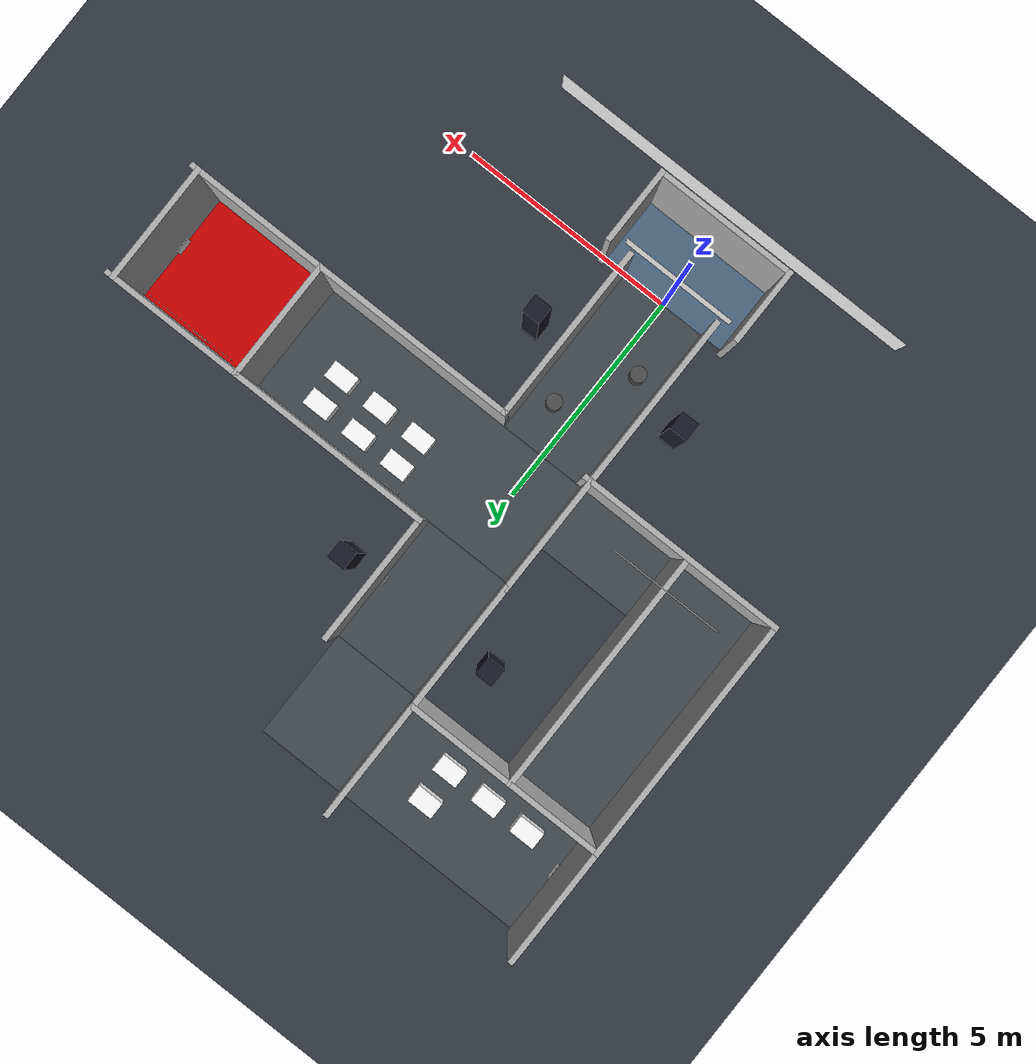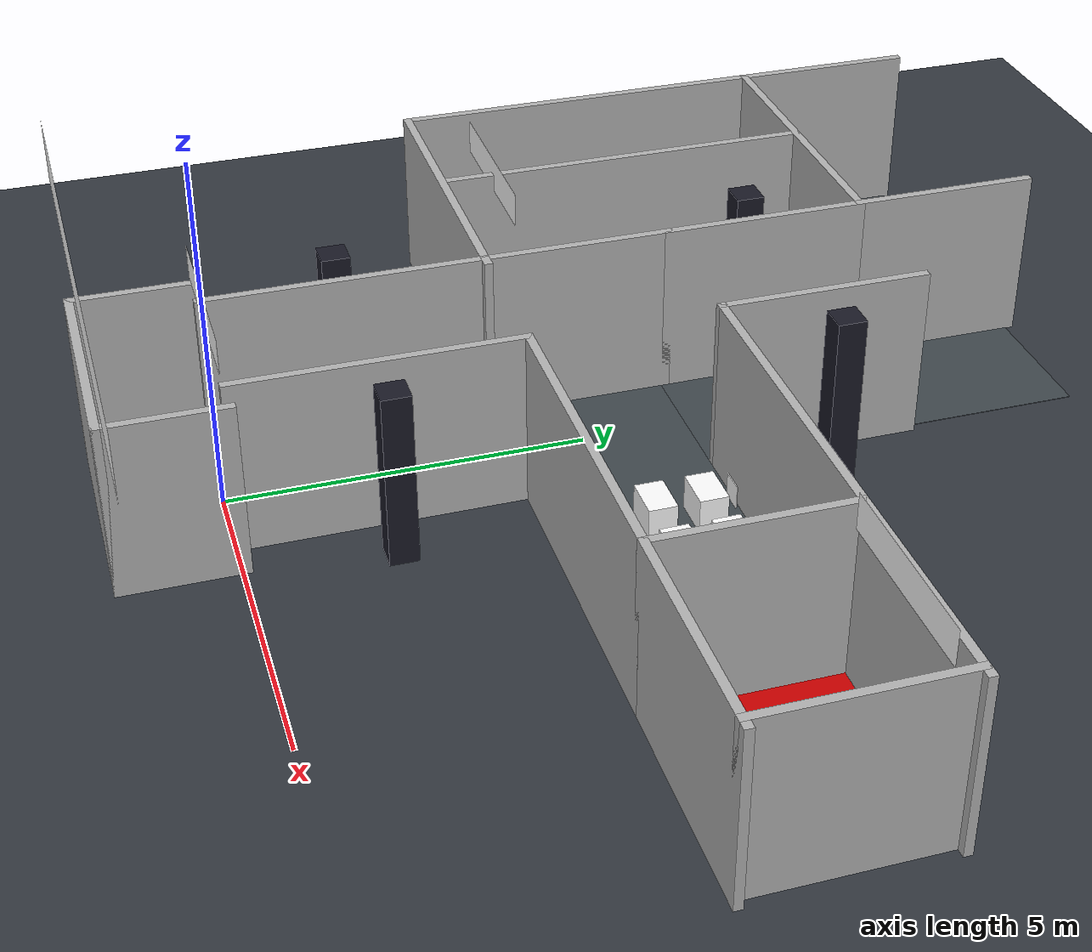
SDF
<sdf version="1.6">
 <world name="mahe_arena">
  <model name="ground_plane">
   <static>true</static>
   <link name="link">
    <collision name="collision">
     <geometry><plane><normal>0 0 1</normal><size>100 100</size></plane></geometry>
    </collision>
    <visual name="visual">
     <geometry><plane><normal>0 0 1</normal><size>100 100</size></plane></geometry>
     <material>
      <ambient>0.15 0.16 0.17 1</ambient>
      <diffuse>0.2 0.22 0.25 1</diffuse>
      <specular>0.4 0.4 0.4 1</specular>
     </material>
    </visual>
   </link>
  </model>
  <model name="wall_0">
   <static>true</static>
   <pose>-1.56 -0.7500000000000001 1.25 0 0 0</pose>
   <link name="link">
    <collision name="col"><geometry><box><size>0.12 1.74 2.5</size></box></geometry></collision>
    <visual name="visual">
     <geometry><box><size>0.12 1.74 2.5</size></box></geometry>
     <material>
      <ambient>0.7 0.7 0.7 1.0</ambient>
      <diffuse>0.7 0.7 0.7 1.0</diffuse>
      <specular>0.1 0.1 0.1 1</specular>
     </material>
    </visual>
   </link>
  </model>
  <model name="wall_1">
   <static>true</static>
   <pose>1.56 -0.7500000000000001 1.25 0 0 0</pose>
   <link name="link">
    <collision name="col"><geometry><box><size>0.12 1.74 2.5</size></box></geometry></collision>
    <visual name="visual">
     <geometry><box><size>0.12 1.74 2.5</size></box></geometry>
     <material>
      <ambient>0.7 0.7 0.7 1.0</ambient>
      <diffuse>0.7 0.7 0.7 1.0</diffuse>
      <specular>0.1 0.1 0.1 1</specular>
     </material>
    </visual>
   </link>
  </model>
  <model name="wall_2">
   <static>true</static>
   <pose>0.0 -1.56 1.25 0 0 0</pose>
   <link name="link">
    <collision name="col"><geometry><box><size>3.24 0.12 2.5</size></box></geometry></collision>
    <visual name="visual">
     <geometry><box><size>3.24 0.12 2.5</size></box></geometry>
     <material>
      <ambient>0.7 0.7 0.7 1.0</ambient>
      <diffuse>0.7 0.7 0.7 1.0</diffuse>
      <specular>0.1 0.1 0.1 1</specular>
     </material>
    </visual>
   </link>
  </model>
  <model name="wall_3">
   <static>true</static>
   <pose>-1.06 2.0 1.25 0 0 0</pose>
   <link name="link">
    <collision name="col"><geometry><box><size>0.12 4.0 2.5</size></box></geometry></collision>
    <visual name="visual">
     <geometry><box><size>0.12 4.0 2.5</size></box></geometry>
     <material>
      <ambient>0.7 0.7 0.7 1.0</ambient>
      <diffuse>0.7 0.7 0.7 1.0</diffuse>
      <specular>0.1 0.1 0.1 1</specular>
     </material>
    </visual>
   </link>
  </model>
  <model name="wall_4">
   <static>true</static>
   <pose>1.06 2.0 1.25 0 0 0</pose>
   <link name="link">
    <collision name="col"><geometry><box><size>0.12 4.0 2.5</size></box></geometry></collision>
    <visual name="visual">
     <geometry><box><size>0.12 4.0 2.5</size></box></geometry>
     <material>
      <ambient>0.7 0.7 0.7 1.0</ambient>
      <diffuse>0.7 0.7 0.7 1.0</diffuse>
      <specular>0.1 0.1 0.1 1</specular>
     </material>
    </visual>
   </link>
  </model>
  <model name="wall_5">
   <static>true</static>
   <pose>-1.06 5.25 1.25 0 0 0</pose>
   <link name="link">
    <collision name="col"><geometry><box><size>0.12 2.74 2.5</size></box></geometry></collision>
    <visual name="visual">
     <geometry><box><size>0.12 2.74 2.5</size></box></geometry>
     <material>
      <ambient>0.7 0.7 0.7 1.0</ambient>
      <diffuse>0.7 0.7 0.7 1.0</diffuse>
      <specular>0.1 0.1 0.1 1</specular>
     </material>
    </visual>
   </link>
  </model>
  <model name="wall_6">
   <static>true</static>
   <pose>5.56 5.25 1.25 0 0 0</pose>
   <link name="link">
    <collision name="col"><geometry><box><size>0.12 2.74 2.5</size></box></geometry></collision>
    <visual name="visual">
     <geometry><box><size>0.12 2.74 2.5</size></box></geometry>
     <material>
      <ambient>0.7 0.7 0.7 1.0</ambient>
      <diffuse>0.7 0.7 0.7 1.0</diffuse>
      <specular>0.1 0.1 0.1 1</specular>
     </material>
    </visual>
   </link>
  </model>
  <model name="wall_7">
   <static>true</static>
   <pose>8.56 5.25 1.25 0 0 0</pose>
   <link name="link">
    <collision name="col"><geometry><box><size>0.12 2.74 2.5</size></box></geometry></collision>
    <visual name="visual">
     <geometry><box><size>0.12 2.74 2.5</size></box></geometry>
     <material>
      <ambient>0.7 0.7 0.7 1.0</ambient>
      <diffuse>0.7 0.7 0.7 1.0</diffuse>
      <specular>0.1 0.1 0.1 1</specular>
     </material>
    </visual>
   </link>
  </model>
  <model name="wall_8">
   <static>true</static>
   <pose>3.31 3.94 1.25 0 0 0</pose>
   <link name="link">
    <collision name="col"><geometry><box><size>4.62 0.12 2.5</size></box></geometry></collision>
    <visual name="visual">
     <geometry><box><size>4.62 0.12 2.5</size></box></geometry>
     <material>
      <ambient>0.7 0.7 0.7 1.0</ambient>
      <diffuse>0.7 0.7 0.7 1.0</diffuse>
      <specular>0.1 0.1 0.1 1</specular>
     </material>
    </visual>
   </link>
  </model>
  <model name="wall_9">
   <static>true</static>
   <pose>3.31 6.56 1.25 0 0 0</pose>
   <link name="link">
    <collision name="col"><geometry><box><size>4.62 0.12 2.5</size></box></geometry></collision>
    <visual name="visual">
     <geometry><box><size>4.62 0.12 2.5</size></box></geometry>
     <material>
      <ambient>0.7 0.7 0.7 1.0</ambient>
      <diffuse>0.7 0.7 0.7 1.0</diffuse>
      <specular>0.1 0.1 0.1 1</specular>
     </material>
    </visual>
   </link>
  </model>
  <model name="wall_10">
   <static>true</static>
   <pose>7.12 3.94 1.25 0 0 0</pose>
   <link name="link">
    <collision name="col"><geometry><box><size>3.24 0.12 2.5</size></box></geometry></collision>
    <visual name="visual">
     <geometry><box><size>3.24 0.12 2.5</size></box></geometry>
     <material>
      <ambient>0.7 0.7 0.7 1.0</ambient>
      <diffuse>0.7 0.7 0.7 1.0</diffuse>
      <specular>0.1 0.1 0.1 1</specular>
     </material>
    </visual>
   </link>
  </model>
  <model name="wall_11">
   <static>true</static>
   <pose>7.12 6.56 1.25 0 0 0</pose>
   <link name="link">
    <collision name="col"><geometry><box><size>3.24 0.12 2.5</size></box></geometry></collision>
    <visual name="visual">
     <geometry><box><size>3.24 0.12 2.5</size></box></geometry>
     <material>
      <ambient>0.7 0.7 0.7 1.0</ambient>
      <diffuse>0.7 0.7 0.7 1.0</diffuse>
      <specular>0.1 0.1 0.1 1</specular>
     </material>
    </visual>
   </link>
  </model>
  <model name="wall_12">
   <static>true</static>
   <pose>-1.06 8.0 1.25 0 0 0</pose>
   <link name="link">
    <collision name="col"><geometry><box><size>0.12 3.0 2.5</size></box></geometry></collision>
    <visual name="visual">
     <geometry><box><size>0.12 3.0 2.5</size></box></geometry>
     <material>
      <ambient>0.7 0.7 0.7 1.0</ambient>
      <diffuse>0.7 0.7 0.7 1.0</diffuse>
      <specular>0.1 0.1 0.1 1</specular>
     </material>
    </visual>
   </link>
  </model>
  <model name="wall_13">
   <static>true</static>
   <pose>1.06 8.0 1.25 0 0 0</pose>
   <link name="link">
    <collision name="col"><geometry><box><size>0.12 3.0 2.5</size></box></geometry></collision>
    <visual name="visual">
     <geometry><box><size>0.12 3.0 2.5</size></box></geometry>
     <material>
      <ambient>0.7 0.7 0.7 1.0</ambient>
      <diffuse>0.7 0.7 0.7 1.0</diffuse>
      <specular>0.1 0.1 0.1 1</specular>
     </material>
    </visual>
   </link>
  </model>
  <model name="wall_14">
   <static>true</static>
   <pose>-5.5600000000000005 10.75 1.25 0 0 0</pose>
   <link name="link">
    <collision name="col"><geometry><box><size>0.12 2.74 2.5</size></box></geometry></collision>
    <visual name="visual">
     <geometry><box><size>0.12 2.74 2.5</size></box></geometry>
     <material>
      <ambient>0.7 0.7 0.7 1.0</ambient>
      <diffuse>0.7 0.7 0.7 1.0</diffuse>
      <specular>0.1 0.1 0.1 1</specular>
     </material>
    </visual>
   </link>
  </model>
  <model name="wall_15">
   <static>true</static>
   <pose>-1.06 10.75 1.25 0 0 0</pose>
   <link name="link">
    <collision name="col"><geometry><box><size>0.12 2.74 2.5</size></box></geometry></collision>
    <visual name="visual">
     <geometry><box><size>0.12 2.74 2.5</size></box></geometry>
     <material>
      <ambient>0.7 0.7 0.7 1.0</ambient>
      <diffuse>0.7 0.7 0.7 1.0</diffuse>
      <specular>0.1 0.1 0.1 1</specular>
     </material>
    </visual>
   </link>
  </model>
  <model name="wall_16">
   <static>true</static>
   <pose>-3.31 9.440000000000001 1.25 0 0 0</pose>
   <link name="link">
    <collision name="col"><geometry><box><size>4.62 0.12 2.5</size></box></geometry></collision>
    <visual name="visual">
     <geometry><box><size>4.62 0.12 2.5</size></box></geometry>
     <material>
      <ambient>0.7 0.7 0.7 1.0</ambient>
      <diffuse>0.7 0.7 0.7 1.0</diffuse>
      <specular>0.1 0.1 0.1 1</specular>
     </material>
    </visual>
   </link>
  </model>
  <model name="wall_18">
   <static>true</static>
   <pose>-5.5600000000000005 6.75 1.25 0 0 0</pose>
   <link name="link">
    <collision name="col"><geometry><box><size>0.12 5.5 2.5</size></box></geometry></collision>
    <visual name="visual">
     <geometry><box><size>0.12 5.5 2.5</size></box></geometry>
     <material>
      <ambient>0.7 0.7 0.7 1.0</ambient>
      <diffuse>0.7 0.7 0.7 1.0</diffuse>
      <specular>0.1 0.1 0.1 1</specular>
     </material>
    </visual>
   </link>
  </model>
  <model name="wall_19">
   <static>true</static>
   <pose>-3.44 6.75 1.25 0 0 0</pose>
   <link name="link">
    <collision name="col"><geometry><box><size>0.12 5.5 2.5</size></box></geometry></collision>
    <visual name="visual">
     <geometry><box><size>0.12 5.5 2.5</size></box></geometry>
     <material>
      <ambient>0.7 0.7 0.7 1.0</ambient>
      <diffuse>0.7 0.7 0.7 1.0</diffuse>
      <specular>0.1 0.1 0.1 1</specular>
     </material>
    </visual>
   </link>
  </model>
  <model name="wall_20">
   <static>true</static>
   <pose>-3.25 3.94 1.25 0 0 0</pose>
   <link name="link">
    <collision name="col"><geometry><box><size>4.74 0.12 2.5</size></box></geometry></collision>
    <visual name="visual">
     <geometry><box><size>4.74 0.12 2.5</size></box></geometry>
     <material>
      <ambient>0.7 0.7 0.7 1.0</ambient>
      <diffuse>0.7 0.7 0.7 1.0</diffuse>
      <specular>0.1 0.1 0.1 1</specular>
     </material>
    </visual>
   </link>
  </model>
  <model name="floor_0">
   <static>true</static>
   <pose>0.0 -0.75 0.005 0 0 0</pose>
   <link name="link">
    <collision name="col"><geometry><box><size>3.0 1.5 0.01</size></box></geometry></collision>
    <visual name="visual">
     <geometry><box><size>3.0 1.5 0.01</size></box></geometry>
     <material>
      <ambient>0.3 0.4 0.5 1.0</ambient>
      <diffuse>0.3 0.4 0.5 1.0</diffuse>
      <specular>0.1 0.1 0.1 1</specular>
     </material>
    </visual>
   </link>
  </model>
  <model name="floor_1">
   <static>true</static>
   <pose>0.0 2.0 0.005 0 0 0</pose>
   <link name="link">
    <collision name="col"><geometry><box><size>2.0 4.0 0.01</size></box></geometry></collision>
    <visual name="visual">
     <geometry><box><size>2.0 4.0 0.01</size></box></geometry>
     <material>
      <ambient>0.25 0.28 0.30 1.0</ambient>
      <diffuse>0.25 0.28 0.30 1.0</diffuse>
      <specular>0.1 0.1 0.1 1</specular>
     </material>
    </visual>
   </link>
  </model>
  <model name="floor_2">
   <static>true</static>
   <pose>2.25 5.25 0.005 0 0 0</pose>
   <link name="link">
    <collision name="col"><geometry><box><size>6.5 2.5 0.01</size></box></geometry></collision>
    <visual name="visual">
     <geometry><box><size>6.5 2.5 0.01</size></box></geometry>
     <material>
      <ambient>0.25 0.28 0.30 1.0</ambient>
      <diffuse>0.25 0.28 0.30 1.0</diffuse>
      <specular>0.1 0.1 0.1 1</specular>
     </material>
    </visual>
   </link>
  </model>
  <model name="floor_3">
   <static>true</static>
   <pose>7.0 5.25 0.005 0 0 0</pose>
   <link name="link">
    <collision name="col"><geometry><box><size>3.0 2.5 0.01</size></box></geometry></collision>
    <visual name="visual">
     <geometry><box><size>3.0 2.5 0.01</size></box></geometry>
     <material>
      <ambient>0.8 0.0 0.0 1.0</ambient>
      <diffuse>0.8 0.0 0.0 1.0</diffuse>
      <specular>0.1 0.1 0.1 1</specular>
     </material>
    </visual>
   </link>
  </model>
  <model name="floor_4">
   <static>true</static>
   <pose>0.0 8.0 0.005 0 0 0</pose>
   <link name="link">
    <collision name="col"><geometry><box><size>2.0 3.0 0.01</size></box></geometry></collision>
    <visual name="visual">
     <geometry><box><size>2.0 3.0 0.01</size></box></geometry>
     <material>
      <ambient>0.25 0.28 0.30 1.0</ambient>
      <diffuse>0.25 0.28 0.30 1.0</diffuse>
      <specular>0.1 0.1 0.1 1</specular>
     </material>
    </visual>
   </link>
  </model>
  <model name="floor_5">
   <static>true</static>
   <pose>-2.25 10.75 0.005 0 0 0</pose>
   <link name="link">
    <collision name="col"><geometry><box><size>6.5 2.5 0.01</size></box></geometry></collision>
    <visual name="visual">
     <geometry><box><size>6.5 2.5 0.01</size></box></geometry>
     <material>
      <ambient>0.25 0.28 0.30 1.0</ambient>
      <diffuse>0.25 0.28 0.30 1.0</diffuse>
      <specular>0.1 0.1 0.1 1</specular>
     </material>
    </visual>
   </link>
  </model>
  <model name="floor_6">
   <static>true</static>
   <pose>-4.5 6.75 0.005 0 0 0</pose>
   <link name="link">
    <collision name="col"><geometry><box><size>2.0 5.5 0.01</size></box></geometry></collision>
    <visual name="visual">
     <geometry><box><size>2.0 5.5 0.01</size></box></geometry>
     <material>
      <ambient>0.25 0.28 0.30 1.0</ambient>
      <diffuse>0.25 0.28 0.30 1.0</diffuse>
      <specular>0.1 0.1 0.1 1</specular>
     </material>
    </visual>
   </link>
  </model>
  <model name="floor_7">
   <static>true</static>
   <pose>-2.25 4.75 0.005 0 0 0</pose>
   <link name="link">
    <collision name="col"><geometry><box><size>2.5 1.5 0.01</size></box></geometry></collision>
    <visual name="visual">
     <geometry><box><size>2.5 1.5 0.01</size></box></geometry>
     <material>
      <ambient>0.25 0.28 0.30 1.0</ambient>
      <diffuse>0.25 0.28 0.30 1.0</diffuse>
      <specular>0.1 0.1 0.1 1</specular>
     </material>
    </visual>
   </link>
  </model>
  <model name="pillar_0">
   <static>true</static>
   <pose>-1.8 2.0 1.25 0 0 0</pose>
   <link name="link">
    <collision name="col"><geometry><box><size>0.4 0.4 2.5</size></box></geometry></collision>
    <visual name="visual">
     <geometry><box><size>0.4 0.4 2.5</size></box></geometry>
     <material>
      <ambient>0.1 0.1 0.15 1.0</ambient>
      <diffuse>0.1 0.1 0.15 1.0</diffuse>
      <specular>0.1 0.1 0.1 1</specular>
     </material>
    </visual>
   </link>
  </model>
  <model name="pillar_1">
   <static>true</static>
   <pose>1.8 2.0 1.25 0 0 0</pose>
   <link name="link">
    <collision name="col"><geometry><box><size>0.4 0.4 2.5</size></box></geometry></collision>
    <visual name="visual">
     <geometry><box><size>0.4 0.4 2.5</size></box></geometry>
     <material>
      <ambient>0.1 0.1 0.15 1.0</ambient>
      <diffuse>0.1 0.1 0.15 1.0</diffuse>
      <specular>0.1 0.1 0.1 1</specular>
     </material>
    </visual>
   </link>
  </model>
  <model name="pillar_2">
   <static>true</static>
   <pose>-1.8 8.0 1.25 0 0 0</pose>
   <link name="link">
    <collision name="col"><geometry><box><size>0.4 0.4 2.5</size></box></geometry></collision>
    <visual name="visual">
     <geometry><box><size>0.4 0.4 2.5</size></box></geometry>
     <material>
      <ambient>0.1 0.1 0.15 1.0</ambient>
      <diffuse>0.1 0.1 0.15 1.0</diffuse>
      <specular>0.1 0.1 0.1 1</specular>
     </material>
    </visual>
   </link>
  </model>
  <model name="pillar_3">
   <static>true</static>
   <pose>1.8 8.0 1.25 0 0 0</pose>
   <link name="link">
    <collision name="col"><geometry><box><size>0.4 0.4 2.5</size></box></geometry></collision>
    <visual name="visual">
     <geometry><box><size>0.4 0.4 2.5</size></box></geometry>
     <material>
      <ambient>0.1 0.1 0.15 1.0</ambient>
      <diffuse>0.1 0.1 0.15 1.0</diffuse>
      <specular>0.1 0.1 0.1 1</specular>
     </material>
    </visual>
   </link>
  </model>
  <model name="obs_box_0">
   <static>true</static>
   <pose>2.2 5.3 0.25 0 0 0</pose>
   <link name="link">
    <collision name="col"><geometry><box><size>0.6 0.4 0.5</size></box></geometry></collision>
    <visual name="visual">
     <geometry><box><size>0.6 0.4 0.5</size></box></geometry>
     <material>
      <diffuse>1 1 1 1</diffuse>
      <ambient>1 1 1 1</ambient>
      <pbr>
       <metal>
        <albedo_map>../meshes/textures/crate.png</albedo_map>
        <roughness>1.0</roughness>
        <metalness>0.0</metalness>
       </metal>
      </pbr>
     </material>
    </visual>
   </link>
  </model>
  <model name="obs_box_1">
   <static>true</static>
   <pose>3.2 5.3 0.25 0 0 0</pose>
   <link name="link">
    <collision name="col"><geometry><box><size>0.6 0.4 0.5</size></box></geometry></collision>
    <visual name="visual">
     <geometry><box><size>0.6 0.4 0.5</size></box></geometry>
     <material>
      <diffuse>1 1 1 1</diffuse>
      <ambient>1 1 1 1</ambient>
      <pbr>
       <metal>
        <albedo_map>../meshes/textures/crate.png</albedo_map>
        <roughness>1.0</roughness>
        <metalness>0.0</metalness>
       </metal>
      </pbr>
     </material>
    </visual>
   </link>
  </model>
  <model name="obs_box_2">
   <static>true</static>
   <pose>4.2 5.3 0.25 0 0 0</pose>
   <link name="link">
    <collision name="col"><geometry><box><size>0.6 0.4 0.5</size></box></geometry></collision>
    <visual name="visual">
     <geometry><box><size>0.6 0.4 0.5</size></box></geometry>
     <material>
      <diffuse>1 1 1 1</diffuse>
      <ambient>1 1 1 1</ambient>
      <pbr>
       <metal>
        <albedo_map>../meshes/textures/crate.png</albedo_map>
        <roughness>1.0</roughness>
        <metalness>0.0</metalness>
       </metal>
      </pbr>
     </material>
    </visual>
   </link>
  </model>
  <model name="obs_box_3">
   <static>true</static>
   <pose>2.2 6.0 0.25 0 0 0</pose>
   <link name="link">
    <collision name="col"><geometry><box><size>0.6 0.4 0.5</size></box></geometry></collision>
    <visual name="visual">
     <geometry><box><size>0.6 0.4 0.5</size></box></geometry>
     <material>
      <diffuse>1 1 1 1</diffuse>
      <ambient>1 1 1 1</ambient>
      <pbr>
       <metal>
        <albedo_map>../meshes/textures/crate.png</albedo_map>
        <roughness>1.0</roughness>
        <metalness>0.0</metalness>
       </metal>
      </pbr>
     </material>
    </visual>
   </link>
  </model>
  <model name="obs_box_4">
   <static>true</static>
   <pose>3.2 6.0 0.25 0 0 0</pose>
   <link name="link">
    <collision name="col"><geometry><box><size>0.6 0.4 0.5</size></box></geometry></collision>
    <visual name="visual">
     <geometry><box><size>0.6 0.4 0.5</size></box></geometry>
     <material>
      <diffuse>1 1 1 1</diffuse>
      <ambient>1 1 1 1</ambient>
      <pbr>
       <metal>
        <albedo_map>../meshes/textures/crate.png</albedo_map>
        <roughness>1.0</roughness>
        <metalness>0.0</metalness>
       </metal>
      </pbr>
     </material>
    </visual>
   </link>
  </model>
  <model name="obs_box_5">
   <static>true</static>
   <pose>4.2 6.0 0.25 0 0 0</pose>
   <link name="link">
    <collision name="col"><geometry><box><size>0.6 0.4 0.5</size></box></geometry></collision>
    <visual name="visual">
     <geometry><box><size>0.6 0.4 0.5</size></box></geometry>
     <material>
      <diffuse>1 1 1 1</diffuse>
      <ambient>1 1 1 1</ambient>
      <pbr>
       <metal>
        <albedo_map>../meshes/textures/crate.png</albedo_map>
        <roughness>1.0</roughness>
        <metalness>0.0</metalness>
       </metal>
      </pbr>
     </material>
    </visual>
   </link>
  </model>
  <model name="obs_box_6">
   <static>true</static>
   <pose>-2.5 10.2 0.25 0 0 0</pose>
   <link name="link">
    <collision name="col"><geometry><box><size>0.6 0.4 0.5</size></box></geometry></collision>
    <visual name="visual">
     <geometry><box><size>0.6 0.4 0.5</size></box></geometry>
     <material>
      <diffuse>1 1 1 1</diffuse>
      <ambient>1 1 1 1</ambient>
      <pbr>
       <metal>
        <albedo_map>../meshes/textures/crate.png</albedo_map>
        <roughness>1.0</roughness>
        <metalness>0.0</metalness>
       </metal>
      </pbr>
     </material>
    </visual>
   </link>
  </model>
  <model name="obs_box_7">
   <static>true</static>
   <pose>-3.5 10.2 0.25 0 0 0</pose>
   <link name="link">
    <collision name="col"><geometry><box><size>0.6 0.4 0.5</size></box></geometry></collision>
    <visual name="visual">
     <geometry><box><size>0.6 0.4 0.5</size></box></geometry>
     <material>
      <diffuse>1 1 1 1</diffuse>
      <ambient>1 1 1 1</ambient>
      <pbr>
       <metal>
        <albedo_map>../meshes/textures/crate.png</albedo_map>
        <roughness>1.0</roughness>
        <metalness>0.0</metalness>
       </metal>
      </pbr>
     </material>
    </visual>
   </link>
  </model>
  <model name="obs_box_8">
   <static>true</static>
   <pose>-4.5 10.2 0.25 0 0 0</pose>
   <link name="link">
    <collision name="col"><geometry><box><size>0.6 0.4 0.5</size></box></geometry></collision>
    <visual name="visual">
     <geometry><box><size>0.6 0.4 0.5</size></box></geometry>
     <material>
      <diffuse>1 1 1 1</diffuse>
      <ambient>1 1 1 1</ambient>
      <pbr>
       <metal>
        <albedo_map>../meshes/textures/crate.png</albedo_map>
        <roughness>1.0</roughness>
        <metalness>0.0</metalness>
       </metal>
      </pbr>
     </material>
    </visual>
   </link>
  </model>
  <model name="obs_box_9">
   <static>true</static>
   <pose>-2.5 11.0 0.25 0 0 0</pose>
   <link name="link">
    <collision name="col"><geometry><box><size>0.6 0.4 0.5</size></box></geometry></collision>
    <visual name="visual">
     <geometry><box><size>0.6 0.4 0.5</size></box></geometry>
     <material>
      <diffuse>1 1 1 1</diffuse>
      <ambient>1 1 1 1</ambient>
      <pbr>
       <metal>
        <albedo_map>../meshes/textures/crate.png</albedo_map>
        <roughness>1.0</roughness>
        <metalness>0.0</metalness>
       </metal>
      </pbr>
     </material>
    </visual>
   </link>
  </model>
  <model name="obs_cyl_0">
   <static>true</static>
   <pose>-0.5 1.5 0.25 0 0 0</pose>
   <link name="link">
    <collision name="collision">
     <geometry><cylinder><radius>0.175</radius><length>0.5</length></cylinder></geometry>
    </collision>
    <visual name="visual">
     <geometry><cylinder><radius>0.175</radius><length>0.5</length></cylinder></geometry>
     <material><ambient>0.3 0.3 0.3 1</ambient><diffuse>0.3 0.3 0.3 1</diffuse></material>
    </visual>
   </link>
  </model>
  <model name="obs_cyl_1">
   <static>true</static>
   <pose>0.5 3.0 0.25 0 0 0</pose>
   <link name="link">
    <collision name="collision">
     <geometry><cylinder><radius>0.175</radius><length>0.5</length></cylinder></geometry>
    </collision>
    <visual name="visual">
     <geometry><cylinder><radius>0.175</radius><length>0.5</length></cylinder></geometry>
     <material><ambient>0.3 0.3 0.3 1</ambient><diffuse>0.3 0.3 0.3 1</diffuse></material>
    </visual>
   </link>
  </model>
  <model name="aruco_0">
   <static>true</static>
   <pose>0.93 8.0 0.2 0 0 1.5708</pose>
   <link name="link">
    <collision name="col"><geometry><box><size>0.2 0.01 0.2</size></box></geometry></collision>
    <visual name="visual">
     <geometry><box><size>0.2 0.01 0.2</size></box></geometry>
     <material>
      <diffuse>1 1 1 1</diffuse>
      <ambient>1 1 1 1</ambient>
      <pbr>
       <metal>
        <albedo_map>../meshes/textures/aruco_id0.png</albedo_map>
        <roughness>1.0</roughness>
        <metalness>0.0</metalness>
       </metal>
      </pbr>
     </material>
    </visual>
   </link>
  </model>
  <model name="sign_0">
   <static>true</static>
   <pose>2.0 6.44 0.2 0 0 3.14159</pose>
   <link name="link">
    <collision name="col"><geometry><box><size>0.35 0.01 0.35</size></box></geometry></collision>
    <visual name="visual">
     <geometry><box><size>0.35 0.01 0.35</size></box></geometry>
     <material>
      <diffuse>1 1 1 1</diffuse>
      <ambient>1 1 1 1</ambient>
      <pbr>
       <metal>
        <albedo_map>../meshes/textures/FORWARD.png</albedo_map>
        <roughness>1.0</roughness>
        <metalness>0.0</metalness>
       </metal>
      </pbr>
     </material>
    </visual>
   </link>
  </model>
  <model name="sign_1">
   <static>true</static>
   <pose>8.44 5.2 0.2 0 0 1.5708</pose>
   <link name="link">
    <collision name="col"><geometry><box><size>0.35 0.01 0.35</size></box></geometry></collision>
    <visual name="visual">
     <geometry><box><size>0.35 0.01 0.35</size></box></geometry>
     <material>
      <diffuse>1 1 1 1</diffuse>
      <ambient>1 1 1 1</ambient>
      <pbr>
       <metal>
        <albedo_map>../meshes/textures/RIGHT.png</albedo_map>
        <roughness>1.0</roughness>
        <metalness>0.0</metalness>
       </metal>
      </pbr>
     </material>
    </visual>
   </link>
  </model>
  <model name="sign_3">
   <static>true</static>
   <pose>-5.44 10.5 0.2 0 0 -1.5708</pose>
   <link name="link">
    <collision name="col"><geometry><box><size>0.35 0.01 0.35</size></box></geometry></collision>
    <visual name="visual">
     <geometry><box><size>0.35 0.01 0.35</size></box></geometry>
     <material>
      <diffuse>1 1 1 1</diffuse>
      <ambient>1 1 1 1</ambient>
      <pbr>
       <metal>
        <albedo_map>../meshes/textures/LEFT.png</albedo_map>
        <roughness>1.0</roughness>
        <metalness>0.0</metalness>
       </metal>
      </pbr>
     </material>
    </visual>
   </link>
  </model>
  <model name="sign_7">
   <static>true</static>
   <pose>7.0 6.44 0.2 0 0 3.14159</pose>
   <link name="link">
    <collision name="col"><geometry><box><size>0.35 0.01 0.35</size></box></geometry></collision>
    <visual name="visual">
     <geometry><box><size>0.35 0.01 0.35</size></box></geometry>
     <material>
      <diffuse>1 1 1 1</diffuse>
      <ambient>1 1 1 1</ambient>
      <pbr>
       <metal>
        <albedo_map>../meshes/textures/GOAL.png</albedo_map>
        <roughness>1.0</roughness>
        <metalness>0.0</metalness>
       </metal>
      </pbr>
     </material>
    </visual>
   </link>
  </model>
  <model name="text_team">
   <static>true</static>
   <pose>0.0 -1.5 3.5 0 0 0</pose>
   <link name="link">
    <visual name="visual">
     <geometry><box><size>8.0 0.001 0.9</size></box></geometry>
     <material>
      <diffuse>1 1 1 1</diffuse>
      <ambient>1 1 1 1</ambient>
      <pbr>
       <metal>
        <albedo_map>../meshes/textures/tag_team.png</albedo_map>
        <roughness>1.0</roughness>
        <metalness>0.0</metalness>
       </metal>
      </pbr>
     </material>
    </visual>
   </link>
  </model>
  <model name="text_start">
   <static>true</static>
   <pose>0.0 0.0 3.0 0 0 0</pose>
   <link name="link">
    <visual name="visual">
     <geometry><box><size>2.5 0.001 0.5</size></box></geometry>
     <material>
      <diffuse>1 1 1 1</diffuse>
      <ambient>1 1 1 1</ambient>
      <pbr>
       <metal>
        <albedo_map>../meshes/textures/tag_start.png</albedo_map>
        <roughness>1.0</roughness>
        <metalness>0.0</metalness>
       </metal>
      </pbr>
     </material>
    </visual>
   </link>
  </model>
  <model name="text_false">
   <static>true</static>
   <pose>7.0 6.4 2.5 0 0 0</pose>
   <link name="link">
    <visual name="visual">
     <geometry><box><size>2.5 0.001 0.5</size></box></geometry>
     <material>
      <diffuse>1 1 1 1</diffuse>
      <ambient>1 1 1 1</ambient>
      <pbr>
       <metal>
        <albedo_map>../meshes/textures/tag_false.png</albedo_map>
        <roughness>1.0</roughness>
        <metalness>0.0</metalness>
       </metal>
      </pbr>
     </material>
    </visual>
   </link>
  </model>
  <model name="text_loop">
   <static>true</static>
   <pose>-3.5 4.7 2.5 0 0 0</pose>
   <link name="link">
    <visual name="visual">
     <geometry><box><size>2.5 0.001 0.5</size></box></geometry>
     <material>
      <diffuse>1 1 1 1</diffuse>
      <ambient>1 1 1 1</ambient>
      <pbr>
       <metal>
        <albedo_map>../meshes/textures/tag_loop.png</albedo_map>
        <roughness>1.0</roughness>
        <metalness>0.0</metalness>
       </metal>
      </pbr>
     </material>
    </visual>
   </link>
  </model>
 </world>
</sdf>
